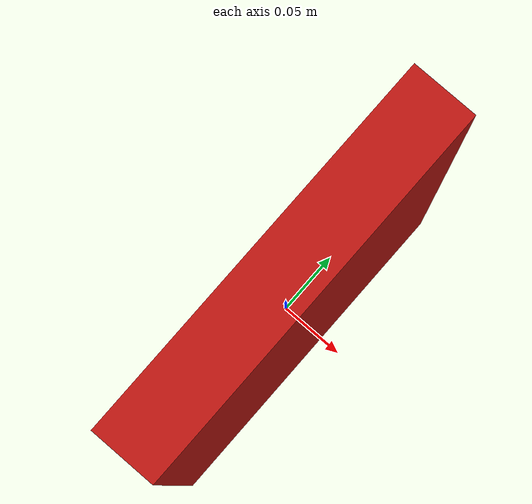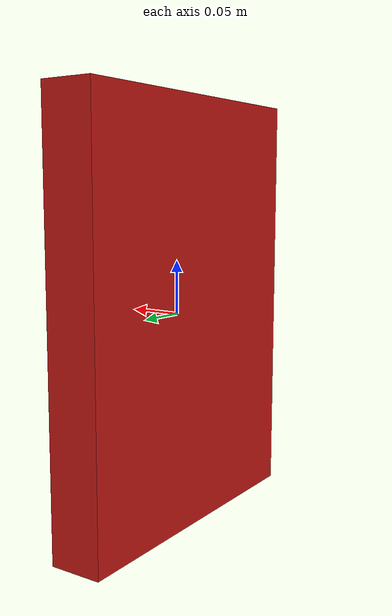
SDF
<?xml version="1.0"?>
<sdf version="1.7">
  <model name="testbed_obstacle">
    <static>true</static>
    <link name="link">
      <visual name="visual">
        <geometry>
          <box>
            <size>0.05 0.30 0.40</size>
          </box>
        </geometry>
        <material>
          <ambient>0.80 0.10 0.08 1.0</ambient>
          <diffuse>0.80 0.10 0.08 1.0</diffuse>
        </material>
      </visual>
      <collision name="collision">
        <geometry>
          <box>
            <size>0.05 0.30 0.40</size>
          </box>
        </geometry>
      </collision>
    </link>
  </model>
</sdf>
